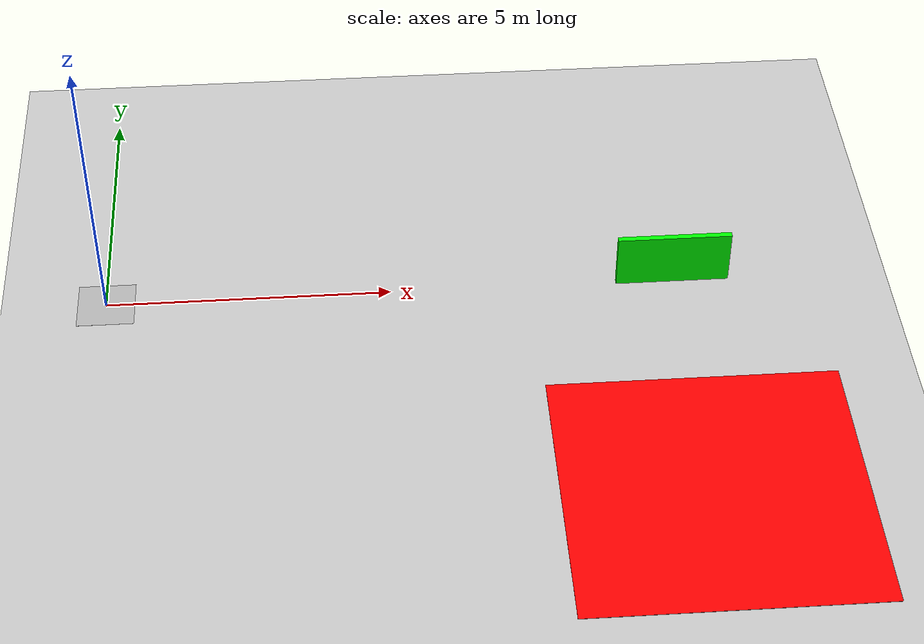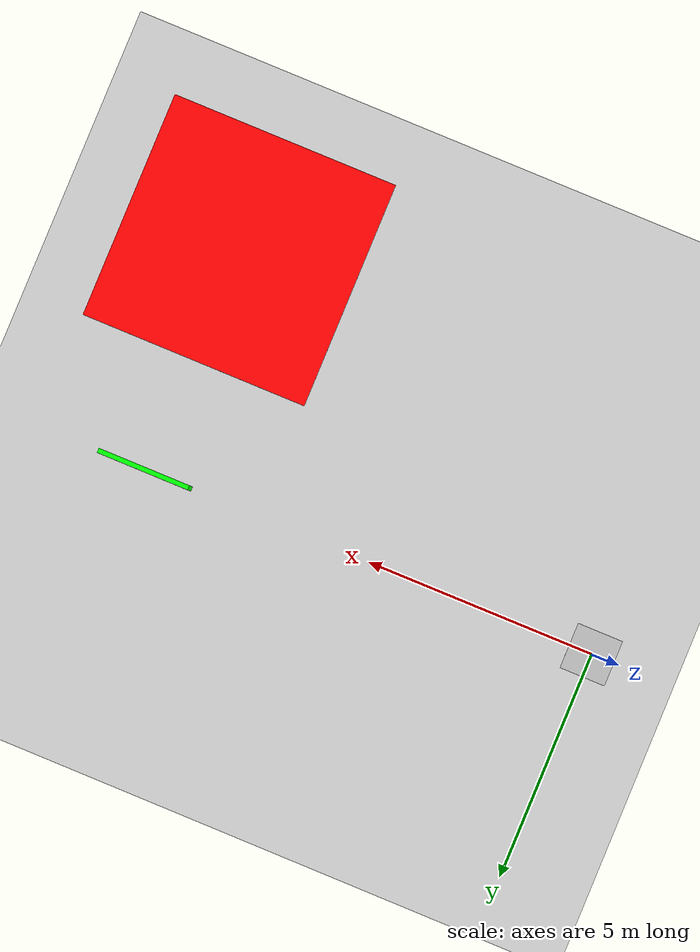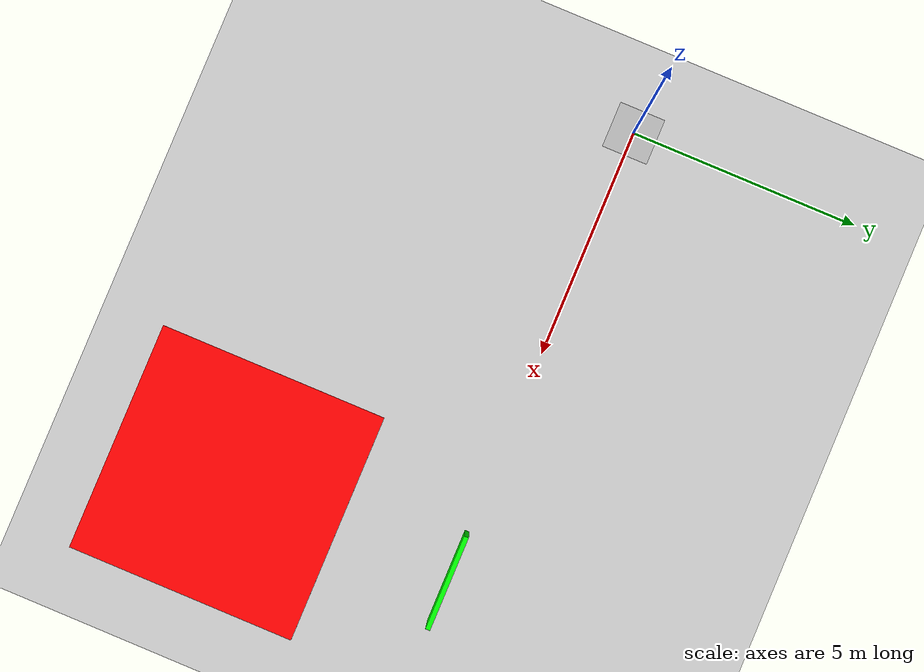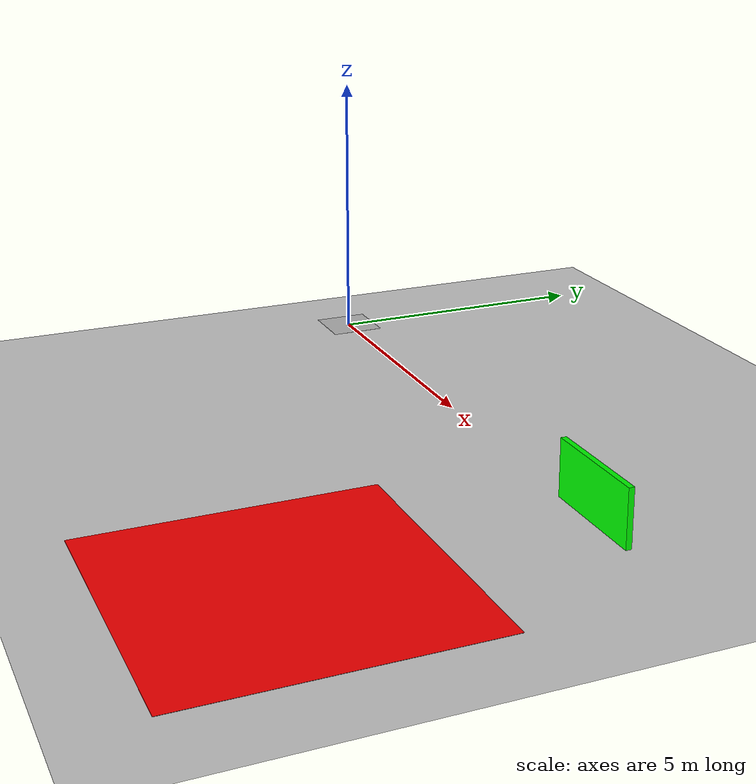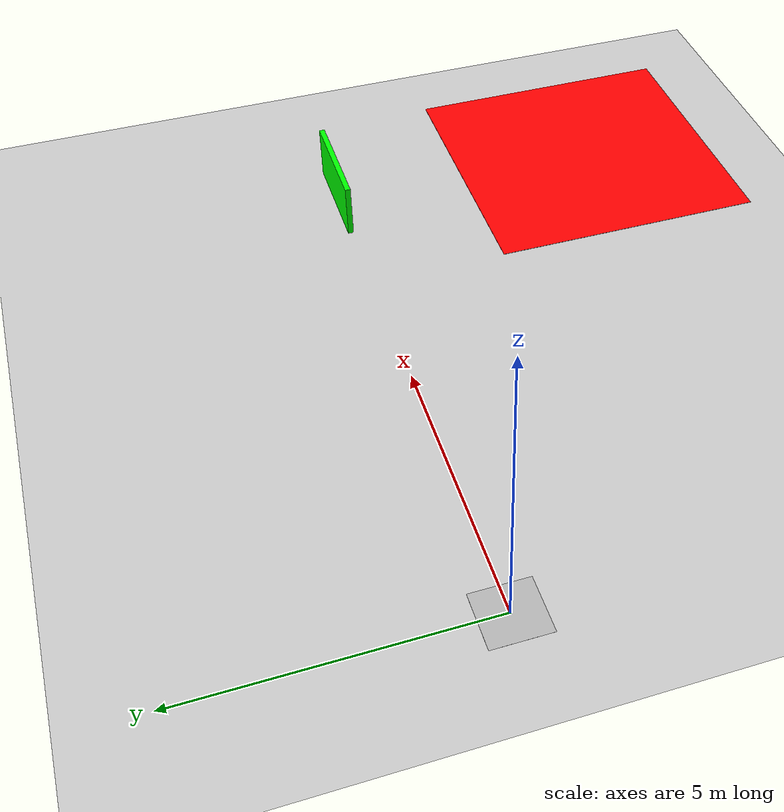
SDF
<?xml version="1.0" ?>
<sdf version="1.6">
  <world name="aerothon_world">
    <include>
      <uri>model://sun</uri>
    </include>
    <include>
      <uri>model://ground_plane</uri>
    </include>

    <include>
      <uri>model://qr_code</uri>
      <name>start_qr</name>
      <pose>0 0 0.01 0 0 0</pose>
    </include>

    <include>
      <uri>model://red_zone</uri>
      <pose>10 -5 0.01 0 0 0</pose>
    </include>

    <include>
      <uri>model://green_banner</uri>
      <pose>10 0 0.5 0 0 0</pose>
    </include>

  </world>
</sdf>

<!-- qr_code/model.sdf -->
<sdf version="1.6">
  <model name="start_qr_target">
    <static>true</static>
    <link name="link">
      <visual name="visual">
        <geometry>
          <plane>
            <normal>0 0 1</normal>
            <size>1 1</size>
          </plane>
        </geometry>
        <material>
          <script>
            <uri>model://qr_code/materials/scripts</uri>
            <uri>model://qr_code/materials/textures</uri>
            <name>AeroTHON/StartQR</name>
          </script>
        </material>
      </visual>
    </link>
  </model>
</sdf>

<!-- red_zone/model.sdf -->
<sdf version="1.6">
  <model name="red_zone">
    <static>true</static>
    <link name="link">
      <visual name="visual">
        <geometry><plane><normal>0 0 1</normal><size>5 5</size></plane></geometry>
        <material>
          <ambient>1 0 0 1</ambient> <diffuse>1 0 0 1</diffuse>
        </material>
      </visual>
    </link>
  </model>
</sdf>

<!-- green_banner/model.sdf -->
<sdf version="1.6">
  <model name="green_banner">
    <static>true</static>
    <link name="link">
      <visual name="visual">
        <geometry><box><size>2 0.1 1</size></box></geometry>
        <material>
          <ambient>0 1 0 1</ambient> <diffuse>0 1 0 1</diffuse>
        </material>
      </visual>
    </link>
  </model>
</sdf>
